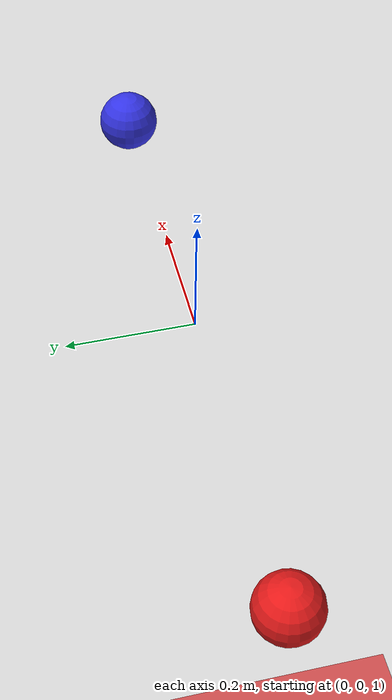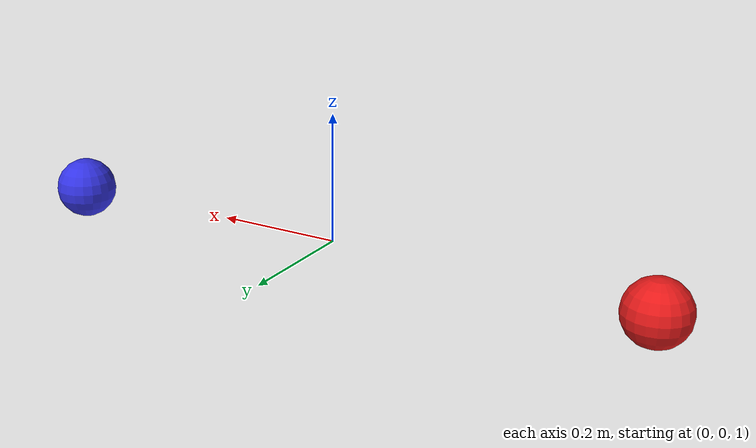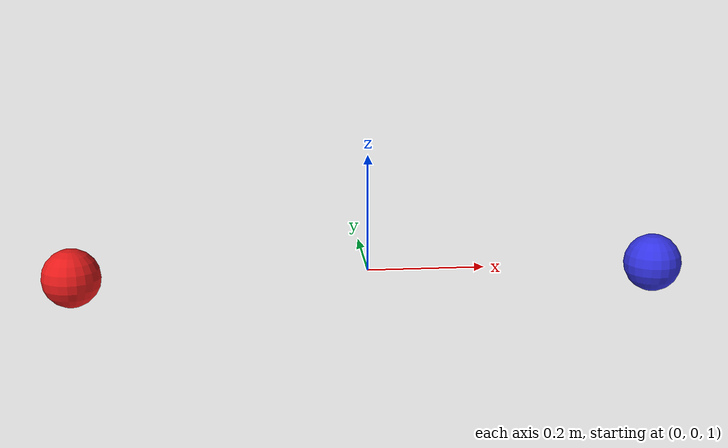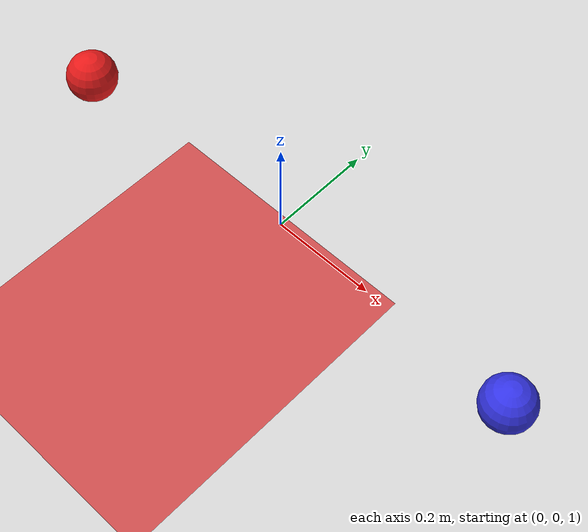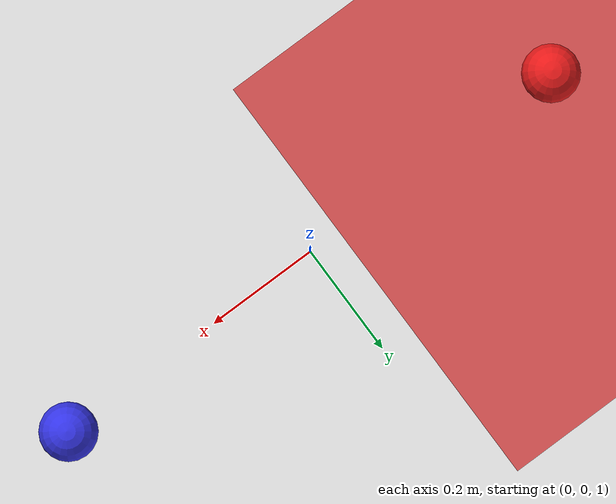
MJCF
<mujoco model="bouncing_ball">
  <!-- 场景1: 自由落体 + 弹跳球
       核心概念: 重力积分、恢复系数(restitution)、接触求解器 solref/solimp
       两个球分别落在"橡胶地面"和"石头地面"上，观察弹跳高度差异 -->

  <compiler angle="radian"/>

  <option timestep="0.002" gravity="0 0 -9.81" integrator="RK4"/>

  <default>
    <geom friction="1 0.005 0.0001"/>
  </default>

  <worldbody>
    <light pos="0 0 3" dir="0 0 -1" diffuse="1 1 1"/>

    <!-- 橡胶地面: solref中第一个值越小恢复系数越高(弹性越好) -->
    <geom name="floor_rubber" type="plane" pos="-0.5 0 0" size="0.4 1 0.1"
          rgba="0.8 0.3 0.3 1" solref="-8000 -40" solimp="0.9 0.95 0.001"/>

    <!-- 石头地面: 几乎不反弹 -->
    <geom name="floor_stone" type="plane" pos="0.5 0 0" size="0.4 1 0.1"
          rgba="0.5 0.5 0.5 1" solref="0.02 1" solimp="0.9 0.95 0.001"/>

    <body name="ball_rubber" pos="-0.5 0 1.0">
      <freejoint/>
      <geom name="ball1" type="sphere" size="0.05" mass="0.2" rgba="0.9 0.1 0.1 1"
            solref="-8000 -40" solimp="0.9 0.95 0.001"/>
    </body>

    <body name="ball_stone" pos="0.5 0 1.0">
      <freejoint/>
      <geom name="ball2" type="sphere" size="0.05" mass="0.2" rgba="0.2 0.2 0.9 1"/>
    </body>
  </worldbody>
</mujoco>
